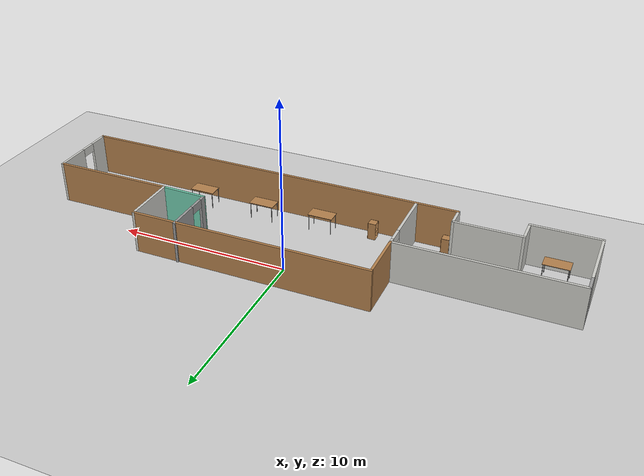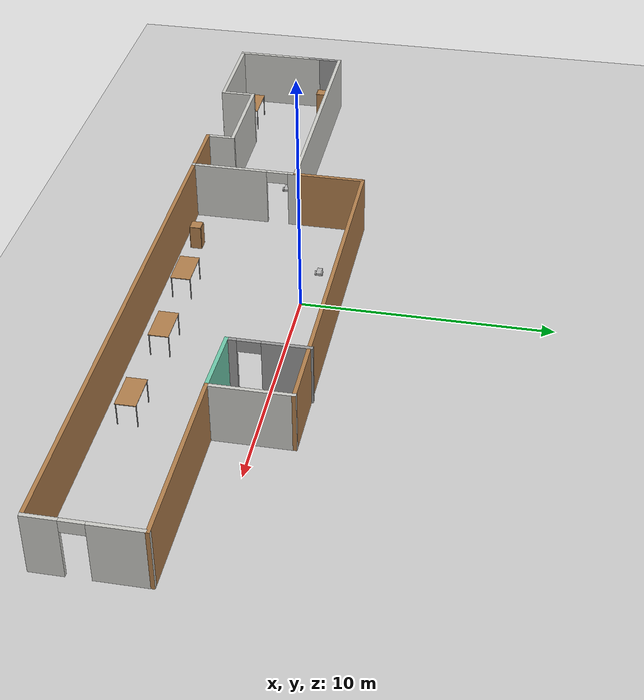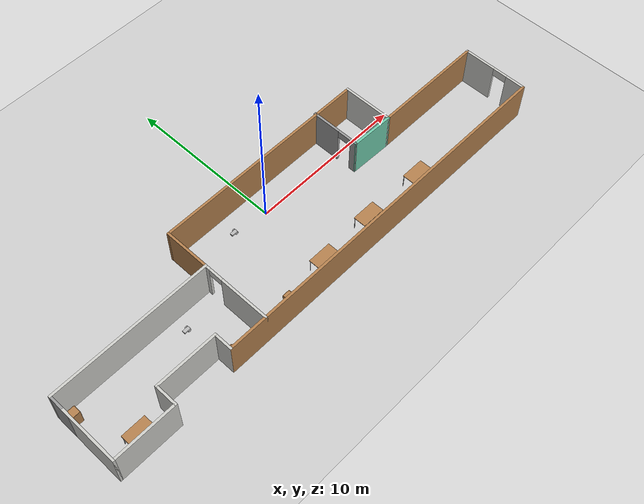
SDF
<sdf version="1.6">
 <world name="default">
  <plugin name="welcome" filename="libwelcome.so"/>
  <light name="sun" type="directional">
   <pose>0 0 10 0 -0 0</pose>
   <diffuse>0.8 0.8 0.8 1</diffuse>
   <specular>0.2 0.2 0.2 1</specular>
   <attenuation>
    <range>1000</range>
    <constant>0.9</constant>
    <linear>0.01</linear>
    <quadratic>0.001</quadratic>
   </attenuation>
   <direction>-0.5 0.1 -0.9</direction>
  </light>
  <model name="ground_plane">
   <static>1</static>
   <link name="link">
    <collision name="collision">
     <geometry><plane><normal>0 0 1</normal><size>100 100</size></plane></geometry>
     <surface>
      <contact><collide_bitmask>65535</collide_bitmask></contact>
      <friction><ode><mu>100</mu><mu2>50</mu2></ode></friction>
     </surface>
    </collision>
    <visual name="visual">
     <cast_shadows>0</cast_shadows>
     <geometry><plane><normal>0 0 1</normal><size>100 100</size></plane></geometry>
     <material>
      <script><uri>file://media/materials/scripts/gazebo.material</uri><name>Gazebo/Grey</name></script>
     </material>
    </visual>
   </link>
  </model>
  <gravity>0 0 -9.8</gravity>
  <magnetic_field>6e-06 2.3e-05 -4.2e-05</magnetic_field>
  <atmosphere type="adiabatic"/>
  <physics name="default_physics" default="0" type="ode">
   <max_step_size>0.001</max_step_size>
   <real_time_factor>1</real_time_factor>
   <real_time_update_rate>1000</real_time_update_rate>
  </physics>
  <scene><ambient>0.4 0.4 0.4 1</ambient><background>0.7 0.7 0.7 1</background><shadows>1</shadows></scene>
  <spherical_coordinates>
   <surface_model>EARTH_WGS84</surface_model>
   <latitude_deg>0</latitude_deg>
   <longitude_deg>0</longitude_deg>
   <elevation>0</elevation>
   <heading_deg>0</heading_deg>
  </spherical_coordinates>
  <model name="MyBuilding">
   <pose>-0.136 -2.179 0 0 -0 0</pose>
   <link name="Wall_0">
    <collision name="Wall_0_Collision">
     <geometry><box><size>3.75 0.15 2.5</size></box></geometry>
     <pose>0 0 1.25 0 -0 0</pose>
    </collision>
    <visual name="Wall_0_Visual">
     <pose>0 0 1.25 0 -0 0</pose>
     <geometry><box><size>3.75 0.15 2.5</size></box></geometry>
     <material>
      <script><uri>file://media/materials/scripts/gazebo.material</uri><name>Gazebo/CeilingTiled</name></script>
      <ambient>1 1 1 1</ambient>
     </material>
     <meta><layer>0</layer></meta>
    </visual>
    <pose>-15.525 -1.95962 0 0 0 -1.5708</pose>
   </link>
   <link name="Wall_1">
    <collision name="Wall_1_Collision">
     <geometry><box><size>4 0.15 2.5</size></box></geometry>
     <pose>0 0 1.25 0 -0 0</pose>
    </collision>
    <visual name="Wall_1_Visual">
     <pose>0 0 1.25 0 -0 0</pose>
     <geometry><box><size>4 0.15 2.5</size></box></geometry>
     <material>
      <script><uri>file://media/materials/scripts/gazebo.material</uri><name>Gazebo/CeilingTiled</name></script>
      <ambient>1 1 1 1</ambient>
     </material>
     <meta><layer>0</layer></meta>
    </visual>
    <pose>-13.6 -3.75962 0 0 -0 0</pose>
   </link>
   <link name="Wall_10">
    <collision name="Wall_10_Collision">
     <geometry><box><size>3 0.15 2.5</size></box></geometry>
     <pose>0 0 1.25 0 -0 0</pose>
    </collision>
    <visual name="Wall_10_Visual">
     <pose>0 0 1.25 0 -0 0</pose>
     <geometry><box><size>3 0.15 2.5</size></box></geometry>
     <material>
      <script><uri>file://media/materials/scripts/gazebo.material</uri><name>Gazebo/Wood</name></script>
      <ambient>1 1 1 1</ambient>
     </material>
     <meta><layer>0</layer></meta>
    </visual>
    <pose>-5.425 2.26539 0 0 0 -1.5708</pose>
   </link>
   <link name="Wall_11">
    <collision name="Wall_11_Collision">
     <geometry><box><size>10.25 0.15 2.5</size></box></geometry>
     <pose>0 0 1.25 0 -0 0</pose>
    </collision>
    <visual name="Wall_11_Visual">
     <pose>0 0 1.25 0 -0 0</pose>
     <geometry><box><size>10.25 0.15 2.5</size></box></geometry>
     <material>
      <script><uri>file://media/materials/scripts/gazebo.material</uri><name>Gazebo/CeilingTiled</name></script>
      <ambient>1 1 1 1</ambient>
     </material>
     <meta><layer>0</layer></meta>
    </visual>
    <pose>-10.475 0.840385 0 0 -0 3.14159</pose>
   </link>
   <link name="Wall_12">
    <collision name="Wall_12_Collision">
     <geometry><box><size>1.5 0.15 2.5</size></box></geometry>
     <pose>0 0 1.25 0 -0 0</pose>
    </collision>
    <visual name="Wall_12_Visual">
     <pose>0 0 1.25 0 -0 0</pose>
     <geometry><box><size>1.5 0.15 2.5</size></box></geometry>
     <material>
      <script><uri>file://media/materials/scripts/gazebo.material</uri><name>Gazebo/Grey</name></script>
      <ambient>1 1 1 1</ambient>
     </material>
     <meta><layer>0</layer></meta>
    </visual>
    <pose>-15.525 0.165385 0 0 0 -1.5708</pose>
   </link>
   <link name="Wall_14">
    <pose>5.8004 2.20961 0 0 0 -1.5708</pose>
    <visual name="Wall_14_Visual_0">
     <pose>-0.679744 0 1.25 0 -0 0</pose>
     <geometry><box><size>1.89051 0.15 2.5</size></box></geometry>
     <material>
      <script><uri>file://media/materials/scripts/gazebo.material</uri><name>Gazebo/Grey</name></script>
      <ambient>1 1 1 1</ambient>
     </material>
     <meta><layer>0</layer></meta>
    </visual>
    <collision name="Wall_14_Collision_0">
     <geometry><box><size>1.89051 0.15 2.5</size></box></geometry>
     <pose>-0.679744 0 1.25 0 -0 0</pose>
    </collision>
    <visual name="Wall_14_Visual_1">
     <pose>1.39526 0 1.25 0 -0 0</pose>
     <geometry><box><size>0.459488 0.15 2.5</size></box></geometry>
     <material>
      <script><uri>file://media/materials/scripts/gazebo.material</uri><name>Gazebo/Grey</name></script>
      <ambient>1 1 1 1</ambient>
     </material>
     <meta><layer>0</layer></meta>
    </visual>
    <collision name="Wall_14_Collision_1">
     <geometry><box><size>0.459488 0.15 2.5</size></box></geometry>
     <pose>1.39526 0 1.25 0 -0 0</pose>
    </collision>
    <visual name="Wall_14_Visual_2">
     <pose>0.715512 0 2.25 0 -0 0</pose>
     <geometry><box><size>0.9 0.15 0.5</size></box></geometry>
     <material>
      <script><uri>file://media/materials/scripts/gazebo.material</uri><name>Gazebo/Grey</name></script>
      <ambient>1 1 1 1</ambient>
     </material>
     <meta><layer>0</layer></meta>
    </visual>
    <collision name="Wall_14_Collision_2">
     <geometry><box><size>0.9 0.15 0.5</size></box></geometry>
     <pose>0.715512 0 2.25 0 -0 0</pose>
    </collision>
   </link>
   <link name="Wall_15">
    <collision name="Wall_15_Collision">
     <geometry><box><size>2.77551 0.15 2.5</size></box></geometry>
     <pose>0 0 1.25 0 -0 0</pose>
    </collision>
    <visual name="Wall_15_Visual">
     <pose>0 0 1.25 0 -0 0</pose>
     <geometry><box><size>2.77551 0.15 2.5</size></box></geometry>
     <material>
      <script><uri>file://media/materials/scripts/gazebo.material</uri><name>Gazebo/Grey</name></script>
      <ambient>0.435294 0.796078 0.67451 1</ambient>
     </material>
     <meta><layer>0</layer></meta>
    </visual>
    <pose>7.1127 0.625 0 0 0 -0.026371</pose>
   </link>
   <link name="Wall_18">
    <pose>-5.425 -1.33462 0 0 0 -1.5708</pose>
    <visual name="Wall_18_Visual_0">
     <pose>-2.05639 0 1.25 0 -0 0</pose>
     <geometry><box><size>0.387227 0.15 2.5</size></box></geometry>
     <material>
      <script><uri>file://media/materials/scripts/gazebo.material</uri><name>Gazebo/CeilingTiled</name></script>
      <ambient>0.435294 0.796078 0.67451 1</ambient>
     </material>
     <meta><layer>0</layer></meta>
    </visual>
    <collision name="Wall_18_Collision_0">
     <geometry><box><size>0.387227 0.15 2.5</size></box></geometry>
     <pose>-2.05639 0 1.25 0 -0 0</pose>
    </collision>
    <visual name="Wall_18_Visual_1">
     <pose>0.643614 0 1.25 0 -0 0</pose>
     <geometry><box><size>3.21277 0.15 2.5</size></box></geometry>
     <material>
      <script><uri>file://media/materials/scripts/gazebo.material</uri><name>Gazebo/CeilingTiled</name></script>
      <ambient>0.435294 0.796078 0.67451 1</ambient>
     </material>
     <meta><layer>0</layer></meta>
    </visual>
    <collision name="Wall_18_Collision_1">
     <geometry><box><size>3.21277 0.15 2.5</size></box></geometry>
     <pose>0.643614 0 1.25 0 -0 0</pose>
    </collision>
    <visual name="Wall_18_Visual_2">
     <pose>-1.41277 0 2.25 0 -0 0</pose>
     <geometry><box><size>0.9 0.15 0.5</size></box></geometry>
     <material>
      <script><uri>file://media/materials/scripts/gazebo.material</uri><name>Gazebo/CeilingTiled</name></script>
      <ambient>0.435294 0.796078 0.67451 1</ambient>
     </material>
     <meta><layer>0</layer></meta>
    </visual>
    <collision name="Wall_18_Collision_2">
     <geometry><box><size>0.9 0.15 0.5</size></box></geometry>
     <pose>-1.41277 0 2.25 0 -0 0</pose>
    </collision>
   </link>
   <link name="Wall_2">
    <collision name="Wall_2_Collision">
     <geometry><box><size>1.5 0.15 2.5</size></box></geometry>
     <pose>0 0 1.25 0 -0 0</pose>
    </collision>
    <visual name="Wall_2_Visual">
     <pose>0 0 1.25 0 -0 0</pose>
     <geometry><box><size>1.5 0.15 2.5</size></box></geometry>
     <material>
      <script><uri>file://media/materials/scripts/gazebo.material</uri><name>Gazebo/CeilingTiled</name></script>
      <ambient>1 1 1 1</ambient>
     </material>
     <meta><layer>0</layer></meta>
    </visual>
    <pose>-11.675 -3.08461 0 0 -0 1.5708</pose>
   </link>
   <link name="Wall_3">
    <collision name="Wall_3_Collision">
     <geometry><box><size>4 0.15 2.5</size></box></geometry>
     <pose>0 0 1.25 0 -0 0</pose>
    </collision>
    <visual name="Wall_3_Visual">
     <pose>0 0 1.25 0 -0 0</pose>
     <geometry><box><size>4 0.15 2.5</size></box></geometry>
     <material>
      <script><uri>file://media/materials/scripts/gazebo.material</uri><name>Gazebo/CeilingTiled</name></script>
      <ambient>1 1 1 1</ambient>
     </material>
     <meta><layer>0</layer></meta>
    </visual>
    <pose>-9.75 -2.40962 0 0 -0 0</pose>
   </link>
   <link name="Wall_4">
    <collision name="Wall_4_Collision">
     <geometry><box><size>1.25 0.15 2.5</size></box></geometry>
     <pose>0 0 1.25 0 -0 0</pose>
    </collision>
    <visual name="Wall_4_Visual">
     <pose>0 0 1.25 0 -0 0</pose>
     <geometry><box><size>1.25 0.15 2.5</size></box></geometry>
     <material>
      <script><uri>file://media/materials/scripts/gazebo.material</uri><name>Gazebo/CeilingTiled</name></script>
      <ambient>1 1 1 1</ambient>
     </material>
     <meta><layer>0</layer></meta>
    </visual>
    <pose>-7.825 -2.95961 0 0 0 -1.5708</pose>
   </link>
   <link name="Wall_5">
    <collision name="Wall_5_Collision">
     <geometry><box><size>23.5 0.15 2.5</size></box></geometry>
     <pose>0 0 1.25 0 -0 0</pose>
    </collision>
    <visual name="Wall_5_Visual">
     <pose>0 0 1.25 0 -0 0</pose>
     <geometry><box><size>23.5 0.15 2.5</size></box></geometry>
     <material>
      <script><uri>file://media/materials/scripts/gazebo.material</uri><name>Gazebo/Wood</name></script>
      <ambient>1 1 1 1</ambient>
     </material>
     <meta><layer>0</layer></meta>
    </visual>
    <pose>3.85 -3.50962 0 0 -0 0</pose>
   </link>
   <link name="Wall_6">
    <pose>15.525 -1.45962 0 0 -0 1.5708</pose>
    <visual name="Wall_6_Visual_0">
     <pose>-1.48955 0 1.25 0 -0 0</pose>
     <geometry><box><size>1.2709 0.15 2.5</size></box></geometry>
     <material>
      <script><uri>file://media/materials/scripts/gazebo.material</uri><name>Gazebo/CeilingTiled</name></script>
      <ambient>1 1 1 1</ambient>
     </material>
     <meta><layer>0</layer></meta>
    </visual>
    <collision name="Wall_6_Collision_0">
     <geometry><box><size>1.2709 0.15 2.5</size></box></geometry>
     <pose>-1.48955 0 1.25 0 -0 0</pose>
    </collision>
    <visual name="Wall_6_Visual_1">
     <pose>1.08545 0 1.25 0 -0 0</pose>
     <geometry><box><size>2.0791 0.15 2.5</size></box></geometry>
     <material>
      <script><uri>file://media/materials/scripts/gazebo.material</uri><name>Gazebo/CeilingTiled</name></script>
      <ambient>1 1 1 1</ambient>
     </material>
     <meta><layer>0</layer></meta>
    </visual>
    <collision name="Wall_6_Collision_1">
     <geometry><box><size>2.0791 0.15 2.5</size></box></geometry>
     <pose>1.08545 0 1.25 0 -0 0</pose>
    </collision>
    <visual name="Wall_6_Visual_2">
     <pose>-0.404095 0 2.25 0 -0 0</pose>
     <geometry><box><size>0.9 0.15 0.5</size></box></geometry>
     <material>
      <script><uri>file://media/materials/scripts/gazebo.material</uri><name>Gazebo/CeilingTiled</name></script>
      <ambient>1 1 1 1</ambient>
     </material>
     <meta><layer>0</layer></meta>
    </visual>
    <collision name="Wall_6_Collision_2">
     <geometry><box><size>0.9 0.15 0.5</size></box></geometry>
     <pose>-0.404095 0 2.25 0 -0 0</pose>
    </collision>
   </link>
   <link name="Wall_7">
    <collision name="Wall_7_Collision">
     <geometry><box><size>7.25 0.15 2.5</size></box></geometry>
     <pose>0 0 1.25 0 -0 0</pose>
    </collision>
    <visual name="Wall_7_Visual">
     <pose>0 0 1.25 0 -0 0</pose>
     <geometry><box><size>7.25 0.15 2.5</size></box></geometry>
     <material>
      <script><uri>file://media/materials/scripts/gazebo.material</uri><name>Gazebo/Wood</name></script>
      <ambient>1 1 1 1</ambient>
     </material>
     <meta><layer>0</layer></meta>
    </visual>
    <pose>11.975 0.590385 0 0 -0 3.14159</pose>
   </link>
   <link name="Wall_8">
    <collision name="Wall_8_Collision">
     <geometry><box><size>3.25 0.15 2.5</size></box></geometry>
     <pose>0 0 1.25 0 -0 0</pose>
    </collision>
    <visual name="Wall_8_Visual">
     <pose>0 0 1.25 0 -0 0</pose>
     <geometry><box><size>3.25 0.15 2.5</size></box></geometry>
     <material>
      <script><uri>file://media/materials/scripts/gazebo.material</uri><name>Gazebo/CeilingTiled</name></script>
      <ambient>1 1 1 1</ambient>
     </material>
     <meta><layer>0</layer></meta>
    </visual>
    <pose>8.425 2.14039 0 0 -0 1.5708</pose>
   </link>
   <link name="Wall_9">
    <collision name="Wall_9_Collision">
     <geometry><box><size>14 0.15 2.5</size></box></geometry>
     <pose>0 0 1.25 0 -0 0</pose>
    </collision>
    <visual name="Wall_9_Visual">
     <pose>0 0 1.25 0 -0 0</pose>
     <geometry><box><size>14 0.15 2.5</size></box></geometry>
     <material>
      <script><uri>file://media/materials/scripts/gazebo.material</uri><name>Gazebo/Wood</name></script>
      <ambient>1 1 1 1</ambient>
     </material>
     <meta><layer>0</layer></meta>
    </visual>
    <pose>1.5 3.69039 0 0 -0 3.14159</pose>
   </link>
   <static>1</static>
  </model>
  <audio><device>default</device></audio>
  <model name="cabinet">
   <static>1</static>
   <link name="cabinet_bottom_plate">
    <inertial>
     <pose>0 0 -1 0 -0 0</pose>
     <inertia><ixx>2.05</ixx><ixy>0</ixy><ixz>0</ixz><iyy>2.05</iyy><iyz>0</iyz><izz>2.05</izz></inertia>
     <mass>25</mass>
    </inertial>
    <collision name="cabinet_bottom_plate_geom">
     <pose>0 0 0.01 0 -0 0</pose>
     <geometry><box><size>0.45 0.45 0.02</size></box></geometry>
    </collision>
    <visual name="cabinet_bottom_plate_geom_visual">
     <pose>0 0 0.01 0 -0 0</pose>
     <geometry><box><size>0.45 0.45 0.02</size></box></geometry>
     <material>
      <script><uri>file://media/materials/scripts/gazebo.material</uri><name>Gazebo/Wood</name></script>
     </material>
    </visual>
    <collision name="cabinet_bottom_plate_geom_cabinet_back_plate">
     <pose>0.235 0 0.51 0 -0 0</pose>
     <geometry><box><size>0.02 0.45 1.02</size></box></geometry>
    </collision>
    <visual name="cabinet_bottom_plate_geom_cabinet_back_plate_visual">
     <pose>0.235 0 0.51 0 -0 0</pose>
     <geometry><box><size>0.02 0.45 1.02</size></box></geometry>
     <material>
      <script><uri>file://media/materials/scripts/gazebo.material</uri><name>Gazebo/Wood</name></script>
     </material>
    </visual>
    <collision name="cabinet_bottom_plate_geom_cabinet_left_plate">
     <pose>0 0.235 0.51 0 -0 0</pose>
     <geometry><box><size>0.45 0.02 1.02</size></box></geometry>
    </collision>
    <visual name="cabinet_bottom_plate_geom_cabinet_left_plate_visual">
     <pose>0 0.235 0.51 0 -0 0</pose>
     <geometry><box><size>0.45 0.02 1.02</size></box></geometry>
     <material>
      <script><uri>file://media/materials/scripts/gazebo.material</uri><name>Gazebo/Wood</name></script>
     </material>
    </visual>
    <collision name="cabinet_bottom_plate_geom_cabinet_middle_plate">
     <pose>0 0 0.51 0 -0 0</pose>
     <geometry><box><size>0.45 0.45 0.02</size></box></geometry>
    </collision>
    <visual name="cabinet_bottom_plate_geom_cabinet_middle_plate_visual">
     <pose>0 0 0.51 0 -0 0</pose>
     <geometry><box><size>0.45 0.45 0.02</size></box></geometry>
     <material>
      <script><uri>file://media/materials/scripts/gazebo.material</uri><name>Gazebo/Wood</name></script>
     </material>
    </visual>
    <collision name="cabinet_bottom_plate_geom_cabinet_right_plate">
     <pose>0 -0.235 0.51 0 -0 0</pose>
     <geometry><box><size>0.45 0.02 1.02</size></box></geometry>
    </collision>
    <visual name="cabinet_bottom_plate_geom_cabinet_right_plate_visual">
     <pose>0 -0.235 0.51 0 -0 0</pose>
     <geometry><box><size>0.45 0.02 1.02</size></box></geometry>
     <material>
      <script><uri>file://media/materials/scripts/gazebo.material</uri><name>Gazebo/Wood</name></script>
     </material>
    </visual>
    <collision name="cabinet_bottom_plate_geom_cabinet_top_plate">
     <pose>0 0 1.01 0 -0 0</pose>
     <geometry><box><size>0.45 0.45 0.02</size></box></geometry>
    </collision>
    <visual name="cabinet_bottom_plate_geom_cabinet_top_plate_visual">
     <pose>0 0 1.01 0 -0 0</pose>
     <geometry><box><size>0.45 0.45 0.02</size></box></geometry>
     <material>
      <script><uri>file://media/materials/scripts/gazebo.material</uri><name>Gazebo/Wood</name></script>
     </material>
    </visual>
   </link>
   <pose>-3.28072 -5.05494 0 0 -0 0</pose>
  </model>
  <model name="table">
   <static>1</static>
   <link name="link">
    <collision name="surface">
     <pose>0 0 1 0 -0 0</pose>
     <geometry><box><size>1.5 0.8 0.03</size></box></geometry>
     <surface><friction><ode><mu>0.6</mu><mu2>0.6</mu2></ode></friction></surface>
    </collision>
    <visual name="visual1">
     <pose>0 0 1 0 -0 0</pose>
     <geometry><box><size>1.5 0.8 0.03</size></box></geometry>
     <material>
      <script><uri>file://media/materials/scripts/gazebo.material</uri><name>Gazebo/Wood</name></script>
     </material>
    </visual>
    <collision name="front_left_leg">
     <pose>0.68 0.38 0.5 0 -0 0</pose>
     <geometry><cylinder><radius>0.02</radius><length>1</length></cylinder></geometry>
    </collision>
    <visual name="front_left_leg">
     <pose>0.68 0.38 0.5 0 -0 0</pose>
     <geometry><cylinder><radius>0.02</radius><length>1</length></cylinder></geometry>
     <material>
      <script><uri>file://media/materials/scripts/gazebo.material</uri><name>Gazebo/Grey</name></script>
     </material>
    </visual>
    <collision name="front_right_leg">
     <pose>0.68 -0.38 0.5 0 -0 0</pose>
     <geometry><cylinder><radius>0.02</radius><length>1</length></cylinder></geometry>
    </collision>
    <visual name="front_right_leg">
     <pose>0.68 -0.38 0.5 0 -0 0</pose>
     <geometry><cylinder><radius>0.02</radius><length>1</length></cylinder></geometry>
     <material>
      <script><uri>file://media/materials/scripts/gazebo.material</uri><name>Gazebo/Grey</name></script>
     </material>
    </visual>
    <collision name="back_right_leg">
     <pose>-0.68 -0.38 0.5 0 -0 0</pose>
     <geometry><cylinder><radius>0.02</radius><length>1</length></cylinder></geometry>
    </collision>
    <visual name="back_right_leg">
     <pose>-0.68 -0.38 0.5 0 -0 0</pose>
     <geometry><cylinder><radius>0.02</radius><length>1</length></cylinder></geometry>
     <material>
      <script><uri>file://media/materials/scripts/gazebo.material</uri><name>Gazebo/Grey</name></script>
     </material>
    </visual>
    <collision name="back_left_leg">
     <pose>-0.68 0.38 0.5 0 -0 0</pose>
     <geometry><cylinder><radius>0.02</radius><length>1</length></cylinder></geometry>
    </collision>
    <visual name="back_left_leg">
     <pose>-0.68 0.38 0.5 0 -0 0</pose>
     <geometry><cylinder><radius>0.02</radius><length>1</length></cylinder></geometry>
     <material>
      <script><uri>file://media/materials/scripts/gazebo.material</uri><name>Gazebo/Grey</name></script>
     </material>
    </visual>
   </link>
   <pose>-0.254972 -4.72462 0 0 -0 0</pose>
  </model>
  <model name="table_clone">
   <static>1</static>
   <link name="link">
    <collision name="surface">
     <pose>0 0 1 0 -0 0</pose>
     <geometry><box><size>1.5 0.8 0.03</size></box></geometry>
     <surface><friction><ode><mu>0.6</mu><mu2>0.6</mu2></ode></friction></surface>
    </collision>
    <visual name="visual1">
     <pose>0 0 1 0 -0 0</pose>
     <geometry><box><size>1.5 0.8 0.03</size></box></geometry>
     <material>
      <script><uri>file://media/materials/scripts/gazebo.material</uri><name>Gazebo/Wood</name></script>
     </material>
    </visual>
    <collision name="front_left_leg">
     <pose>0.68 0.38 0.5 0 -0 0</pose>
     <geometry><cylinder><radius>0.02</radius><length>1</length></cylinder></geometry>
    </collision>
    <visual name="front_left_leg">
     <pose>0.68 0.38 0.5 0 -0 0</pose>
     <geometry><cylinder><radius>0.02</radius><length>1</length></cylinder></geometry>
     <material>
      <script><uri>file://media/materials/scripts/gazebo.material</uri><name>Gazebo/Grey</name></script>
     </material>
    </visual>
    <collision name="front_right_leg">
     <pose>0.68 -0.38 0.5 0 -0 0</pose>
     <geometry><cylinder><radius>0.02</radius><length>1</length></cylinder></geometry>
    </collision>
    <visual name="front_right_leg">
     <pose>0.68 -0.38 0.5 0 -0 0</pose>
     <geometry><cylinder><radius>0.02</radius><length>1</length></cylinder></geometry>
     <material>
      <script><uri>file://media/materials/scripts/gazebo.material</uri><name>Gazebo/Grey</name></script>
     </material>
    </visual>
    <collision name="back_right_leg">
     <pose>-0.68 -0.38 0.5 0 -0 0</pose>
     <geometry><cylinder><radius>0.02</radius><length>1</length></cylinder></geometry>
    </collision>
    <visual name="back_right_leg">
     <pose>-0.68 -0.38 0.5 0 -0 0</pose>
     <geometry><cylinder><radius>0.02</radius><length>1</length></cylinder></geometry>
     <material>
      <script><uri>file://media/materials/scripts/gazebo.material</uri><name>Gazebo/Grey</name></script>
     </material>
    </visual>
    <collision name="back_left_leg">
     <pose>-0.68 0.38 0.5 0 -0 0</pose>
     <geometry><cylinder><radius>0.02</radius><length>1</length></cylinder></geometry>
    </collision>
    <visual name="back_left_leg">
     <pose>-0.68 0.38 0.5 0 -0 0</pose>
     <geometry><cylinder><radius>0.02</radius><length>1</length></cylinder></geometry>
     <material>
      <script><uri>file://media/materials/scripts/gazebo.material</uri><name>Gazebo/Grey</name></script>
     </material>
    </visual>
   </link>
   <pose>-13.6502 -5.07837 0 0 -0 0</pose>
  </model>
  <model name="cabinet_clone">
   <static>1</static>
   <link name="cabinet_bottom_plate">
    <inertial>
     <pose>0 0 -1 0 -0 0</pose>
     <inertia><ixx>2.05</ixx><ixy>0</ixy><ixz>0</ixz><iyy>2.05</iyy><iyz>0</iyz><izz>2.05</izz></inertia>
     <mass>25</mass>
    </inertial>
    <collision name="cabinet_bottom_plate_geom">
     <pose>0 0 0.01 0 -0 0</pose>
     <geometry><box><size>0.45 0.45 0.02</size></box></geometry>
    </collision>
    <visual name="cabinet_bottom_plate_geom_visual">
     <pose>0 0 0.01 0 -0 0</pose>
     <geometry><box><size>0.45 0.45 0.02</size></box></geometry>
     <material>
      <script><uri>file://media/materials/scripts/gazebo.material</uri><name>Gazebo/Wood</name></script>
     </material>
    </visual>
    <collision name="cabinet_bottom_plate_geom_cabinet_back_plate">
     <pose>0.235 0 0.51 0 -0 0</pose>
     <geometry><box><size>0.02 0.45 1.02</size></box></geometry>
    </collision>
    <visual name="cabinet_bottom_plate_geom_cabinet_back_plate_visual">
     <pose>0.235 0 0.51 0 -0 0</pose>
     <geometry><box><size>0.02 0.45 1.02</size></box></geometry>
     <material>
      <script><uri>file://media/materials/scripts/gazebo.material</uri><name>Gazebo/Wood</name></script>
     </material>
    </visual>
    <collision name="cabinet_bottom_plate_geom_cabinet_left_plate">
     <pose>0 0.235 0.51 0 -0 0</pose>
     <geometry><box><size>0.45 0.02 1.02</size></box></geometry>
    </collision>
    <visual name="cabinet_bottom_plate_geom_cabinet_left_plate_visual">
     <pose>0 0.235 0.51 0 -0 0</pose>
     <geometry><box><size>0.45 0.02 1.02</size></box></geometry>
     <material>
      <script><uri>file://media/materials/scripts/gazebo.material</uri><name>Gazebo/Wood</name></script>
     </material>
    </visual>
    <collision name="cabinet_bottom_plate_geom_cabinet_middle_plate">
     <pose>0 0 0.51 0 -0 0</pose>
     <geometry><box><size>0.45 0.45 0.02</size></box></geometry>
    </collision>
    <visual name="cabinet_bottom_plate_geom_cabinet_middle_plate_visual">
     <pose>0 0 0.51 0 -0 0</pose>
     <geometry><box><size>0.45 0.45 0.02</size></box></geometry>
     <material>
      <script><uri>file://media/materials/scripts/gazebo.material</uri><name>Gazebo/Wood</name></script>
     </material>
    </visual>
    <collision name="cabinet_bottom_plate_geom_cabinet_right_plate">
     <pose>0 -0.235 0.51 0 -0 0</pose>
     <geometry><box><size>0.45 0.02 1.02</size></box></geometry>
    </collision>
    <visual name="cabinet_bottom_plate_geom_cabinet_right_plate_visual">
     <pose>0 -0.235 0.51 0 -0 0</pose>
     <geometry><box><size>0.45 0.02 1.02</size></box></geometry>
     <material>
      <script><uri>file://media/materials/scripts/gazebo.material</uri><name>Gazebo/Wood</name></script>
     </material>
    </visual>
    <collision name="cabinet_bottom_plate_geom_cabinet_top_plate">
     <pose>0 0 1.01 0 -0 0</pose>
     <geometry><box><size>0.45 0.45 0.02</size></box></geometry>
    </collision>
    <visual name="cabinet_bottom_plate_geom_cabinet_top_plate_visual">
     <pose>0 0 1.01 0 -0 0</pose>
     <geometry><box><size>0.45 0.45 0.02</size></box></geometry>
     <material>
      <script><uri>file://media/materials/scripts/gazebo.material</uri><name>Gazebo/Wood</name></script>
     </material>
    </visual>
   </link>
   <pose>-15.1706 -2.05762 0 0 -0 0</pose>
  </model>
  <model name="cabinet_clone_0">
   <static>1</static>
   <link name="cabinet_bottom_plate">
    <inertial>
     <pose>0 0 -1 0 -0 0</pose>
     <inertia><ixx>2.05</ixx><ixy>0</ixy><ixz>0</ixz><iyy>2.05</iyy><iyz>0</iyz><izz>2.05</izz></inertia>
     <mass>25</mass>
    </inertial>
    <collision name="cabinet_bottom_plate_geom">
     <pose>0 0 0.01 0 -0 0</pose>
     <geometry><box><size>0.45 0.45 0.02</size></box></geometry>
    </collision>
    <visual name="cabinet_bottom_plate_geom_visual">
     <pose>0 0 0.01 0 -0 0</pose>
     <geometry><box><size>0.45 0.45 0.02</size></box></geometry>
     <material>
      <script><uri>file://media/materials/scripts/gazebo.material</uri><name>Gazebo/Wood</name></script>
     </material>
    </visual>
    <collision name="cabinet_bottom_plate_geom_cabinet_back_plate">
     <pose>0.235 0 0.51 0 -0 0</pose>
     <geometry><box><size>0.02 0.45 1.02</size></box></geometry>
    </collision>
    <visual name="cabinet_bottom_plate_geom_cabinet_back_plate_visual">
     <pose>0.235 0 0.51 0 -0 0</pose>
     <geometry><box><size>0.02 0.45 1.02</size></box></geometry>
     <material>
      <script><uri>file://media/materials/scripts/gazebo.material</uri><name>Gazebo/Wood</name></script>
     </material>
    </visual>
    <collision name="cabinet_bottom_plate_geom_cabinet_left_plate">
     <pose>0 0.235 0.51 0 -0 0</pose>
     <geometry><box><size>0.45 0.02 1.02</size></box></geometry>
    </collision>
    <visual name="cabinet_bottom_plate_geom_cabinet_left_plate_visual">
     <pose>0 0.235 0.51 0 -0 0</pose>
     <geometry><box><size>0.45 0.02 1.02</size></box></geometry>
     <material>
      <script><uri>file://media/materials/scripts/gazebo.material</uri><name>Gazebo/Wood</name></script>
     </material>
    </visual>
    <collision name="cabinet_bottom_plate_geom_cabinet_middle_plate">
     <pose>0 0 0.51 0 -0 0</pose>
     <geometry><box><size>0.45 0.45 0.02</size></box></geometry>
    </collision>
    <visual name="cabinet_bottom_plate_geom_cabinet_middle_plate_visual">
     <pose>0 0 0.51 0 -0 0</pose>
     <geometry><box><size>0.45 0.45 0.02</size></box></geometry>
     <material>
      <script><uri>file://media/materials/scripts/gazebo.material</uri><name>Gazebo/Wood</name></script>
     </material>
    </visual>
    <collision name="cabinet_bottom_plate_geom_cabinet_right_plate">
     <pose>0 -0.235 0.51 0 -0 0</pose>
     <geometry><box><size>0.45 0.02 1.02</size></box></geometry>
    </collision>
    <visual name="cabinet_bottom_plate_geom_cabinet_right_plate_visual">
     <pose>0 -0.235 0.51 0 -0 0</pose>
     <geometry><box><size>0.45 0.02 1.02</size></box></geometry>
     <material>
      <script><uri>file://media/materials/scripts/gazebo.material</uri><name>Gazebo/Wood</name></script>
     </material>
    </visual>
    <collision name="cabinet_bottom_plate_geom_cabinet_top_plate">
     <pose>0 0 1.01 0 -0 0</pose>
     <geometry><box><size>0.45 0.45 0.02</size></box></geometry>
    </collision>
    <visual name="cabinet_bottom_plate_geom_cabinet_top_plate_visual">
     <pose>0 0 1.01 0 -0 0</pose>
     <geometry><box><size>0.45 0.45 0.02</size></box></geometry>
     <material>
      <script><uri>file://media/materials/scripts/gazebo.material</uri><name>Gazebo/Wood</name></script>
     </material>
    </visual>
   </link>
   <pose>-7.55359 -5.16094 0 0 -0 0</pose>
  </model>
  <model name="table_clone_0">
   <static>1</static>
   <link name="link">
    <collision name="surface">
     <pose>0 0 1 0 -0 0</pose>
     <geometry><box><size>1.5 0.8 0.03</size></box></geometry>
     <surface><friction><ode><mu>0.6</mu><mu2>0.6</mu2></ode></friction></surface>
    </collision>
    <visual name="visual1">
     <pose>0 0 1 0 -0 0</pose>
     <geometry><box><size>1.5 0.8 0.03</size></box></geometry>
     <material>
      <script><uri>file://media/materials/scripts/gazebo.material</uri><name>Gazebo/Wood</name></script>
     </material>
    </visual>
    <collision name="front_left_leg">
     <pose>0.68 0.38 0.5 0 -0 0</pose>
     <geometry><cylinder><radius>0.02</radius><length>1</length></cylinder></geometry>
    </collision>
    <visual name="front_left_leg">
     <pose>0.68 0.38 0.5 0 -0 0</pose>
     <geometry><cylinder><radius>0.02</radius><length>1</length></cylinder></geometry>
     <material>
      <script><uri>file://media/materials/scripts/gazebo.material</uri><name>Gazebo/Grey</name></script>
     </material>
    </visual>
    <collision name="front_right_leg">
     <pose>0.68 -0.38 0.5 0 -0 0</pose>
     <geometry><cylinder><radius>0.02</radius><length>1</length></cylinder></geometry>
    </collision>
    <visual name="front_right_leg">
     <pose>0.68 -0.38 0.5 0 -0 0</pose>
     <geometry><cylinder><radius>0.02</radius><length>1</length></cylinder></geometry>
     <material>
      <script><uri>file://media/materials/scripts/gazebo.material</uri><name>Gazebo/Grey</name></script>
     </material>
    </visual>
    <collision name="back_right_leg">
     <pose>-0.68 -0.38 0.5 0 -0 0</pose>
     <geometry><cylinder><radius>0.02</radius><length>1</length></cylinder></geometry>
    </collision>
    <visual name="back_right_leg">
     <pose>-0.68 -0.38 0.5 0 -0 0</pose>
     <geometry><cylinder><radius>0.02</radius><length>1</length></cylinder></geometry>
     <material>
      <script><uri>file://media/materials/scripts/gazebo.material</uri><name>Gazebo/Grey</name></script>
     </material>
    </visual>
    <collision name="back_left_leg">
     <pose>-0.68 0.38 0.5 0 -0 0</pose>
     <geometry><cylinder><radius>0.02</radius><length>1</length></cylinder></geometry>
    </collision>
    <visual name="back_left_leg">
     <pose>-0.68 0.38 0.5 0 -0 0</pose>
     <geometry><cylinder><radius>0.02</radius><length>1</length></cylinder></geometry>
     <material>
      <script><uri>file://media/materials/scripts/gazebo.material</uri><name>Gazebo/Grey</name></script>
     </material>
    </visual>
   </link>
   <pose>3.42668 -4.57491 0 0 -0 0</pose>
  </model>
  <model name="table_clone_0_clone">
   <static>1</static>
   <link name="link">
    <collision name="surface">
     <pose>0 0 1 0 -0 0</pose>
     <geometry><box><size>1.5 0.8 0.03</size></box></geometry>
     <surface><friction><ode><mu>0.6</mu><mu2>0.6</mu2></ode></friction></surface>
    </collision>
    <visual name="visual1">
     <pose>0 0 1 0 -0 0</pose>
     <geometry><box><size>1.5 0.8 0.03</size></box></geometry>
     <material>
      <script><uri>file://media/materials/scripts/gazebo.material</uri><name>Gazebo/Wood</name></script>
     </material>
    </visual>
    <collision name="front_left_leg">
     <pose>0.68 0.38 0.5 0 -0 0</pose>
     <geometry><cylinder><radius>0.02</radius><length>1</length></cylinder></geometry>
    </collision>
    <visual name="front_left_leg">
     <pose>0.68 0.38 0.5 0 -0 0</pose>
     <geometry><cylinder><radius>0.02</radius><length>1</length></cylinder></geometry>
     <material>
      <script><uri>file://media/materials/scripts/gazebo.material</uri><name>Gazebo/Grey</name></script>
     </material>
    </visual>
    <collision name="front_right_leg">
     <pose>0.68 -0.38 0.5 0 -0 0</pose>
     <geometry><cylinder><radius>0.02</radius><length>1</length></cylinder></geometry>
    </collision>
    <visual name="front_right_leg">
     <pose>0.68 -0.38 0.5 0 -0 0</pose>
     <geometry><cylinder><radius>0.02</radius><length>1</length></cylinder></geometry>
     <material>
      <script><uri>file://media/materials/scripts/gazebo.material</uri><name>Gazebo/Grey</name></script>
     </material>
    </visual>
    <collision name="back_right_leg">
     <pose>-0.68 -0.38 0.5 0 -0 0</pose>
     <geometry><cylinder><radius>0.02</radius><length>1</length></cylinder></geometry>
    </collision>
    <visual name="back_right_leg">
     <pose>-0.68 -0.38 0.5 0 -0 0</pose>
     <geometry><cylinder><radius>0.02</radius><length>1</length></cylinder></geometry>
     <material>
      <script><uri>file://media/materials/scripts/gazebo.material</uri><name>Gazebo/Grey</name></script>
     </material>
    </visual>
    <collision name="back_left_leg">
     <pose>-0.68 0.38 0.5 0 -0 0</pose>
     <geometry><cylinder><radius>0.02</radius><length>1</length></cylinder></geometry>
    </collision>
    <visual name="back_left_leg">
     <pose>-0.68 0.38 0.5 0 -0 0</pose>
     <geometry><cylinder><radius>0.02</radius><length>1</length></cylinder></geometry>
     <material>
      <script><uri>file://media/materials/scripts/gazebo.material</uri><name>Gazebo/Grey</name></script>
     </material>
    </visual>
   </link>
   <pose>7.4459 -4.63607 0 0 -0 0</pose>
  </model>
  <model name="my_robot">
   <static>0</static>
   <link name="chassis">
    <pose>0 0 0.1 0 -0 0</pose>
    <collision name="collision"><geometry><box><size>0.4 0.2 0.1</size></box></geometry></collision>
    <visual name="visual"><geometry><box><size>0.4 0.2 0.1</size></box></geometry></visual>
    <collision name="caster_collision">
     <pose>-0.15 0 -0.05 0 -0 0</pose>
     <geometry><sphere><radius>0.05</radius></sphere></geometry>
     <surface><friction><ode><mu>0</mu><mu2>0</mu2><slip1>1</slip1><slip2>1</slip2></ode></friction></surface>
    </collision>
    <visual name="caster_visual">
     <pose>-0.15 0 -0.05 0 -0 0</pose>
     <geometry><sphere><radius>0.05</radius></sphere></geometry>
    </visual>
    <inertial>
     <inertia><ixx>1</ixx><ixy>0</ixy><ixz>0</ixz><iyy>1</iyy><iyz>0</iyz><izz>1</izz></inertia>
     <mass>1</mass>
    </inertial>
   </link>
   <link name="left_wheel">
    <pose>0.1 0.13 0.1 -0 1.5707 1.5707</pose>
    <collision name="collision">
     <geometry><cylinder><radius>0.1</radius><length>0.05</length></cylinder></geometry>
    </collision>
    <visual name="visual">
     <geometry><cylinder><radius>0.1</radius><length>0.05</length></cylinder></geometry>
    </visual>
    <inertial>
     <inertia><ixx>1</ixx><ixy>0</ixy><ixz>0</ixz><iyy>1</iyy><iyz>0</iyz><izz>1</izz></inertia>
     <mass>1</mass>
    </inertial>
   </link>
   <link name="right_wheel">
    <pose>0.1 -0.13 0.1 -0 1.5707 1.5707</pose>
    <collision name="collision">
     <geometry><cylinder><radius>0.1</radius><length>0.05</length></cylinder></geometry>
    </collision>
    <visual name="visual">
     <geometry><cylinder><radius>0.1</radius><length>0.05</length></cylinder></geometry>
    </visual>
    <inertial>
     <inertia><ixx>1</ixx><ixy>0</ixy><ixz>0</ixz><iyy>1</iyy><iyz>0</iyz><izz>1</izz></inertia>
     <mass>1</mass>
    </inertial>
   </link>
   <joint name="left_wheel_hinge" type="revolute">
    <pose>0 0 -0.03 0 -0 0</pose>
    <child>left_wheel</child>
    <parent>chassis</parent>
    <axis>
     <xyz>0 1 0</xyz>
     <use_parent_model_frame>0</use_parent_model_frame>
     <limit><lower>-1e+16</lower><upper>1e+16</upper></limit>
     <dynamics><spring_reference>0</spring_reference><spring_stiffness>0</spring_stiffness></dynamics>
    </axis>
   </joint>
   <joint name="right_wheel_hinge" type="revolute">
    <pose>0 0 0.03 0 -0 0</pose>
    <child>right_wheel</child>
    <parent>chassis</parent>
    <axis>
     <xyz>0 1 0</xyz>
     <use_parent_model_frame>0</use_parent_model_frame>
     <limit><lower>-1e+16</lower><upper>1e+16</upper></limit>
     <dynamics><spring_reference>0</spring_reference><spring_stiffness>0</spring_stiffness></dynamics>
    </axis>
   </joint>
   <pose>-2.161 0.327148 0 0 -0 0</pose>
  </model>
  <model name="my_robot_clone">
   <static>0</static>
   <link name="chassis">
    <pose>0 0 0.1 0 -0 0</pose>
    <collision name="collision"><geometry><box><size>0.4 0.2 0.1</size></box></geometry></collision>
    <visual name="visual"><geometry><box><size>0.4 0.2 0.1</size></box></geometry></visual>
    <collision name="caster_collision">
     <pose>-0.15 0 -0.05 0 -0 0</pose>
     <geometry><sphere><radius>0.05</radius></sphere></geometry>
     <surface><friction><ode><mu>0</mu><mu2>0</mu2><slip1>1</slip1><slip2>1</slip2></ode></friction></surface>
    </collision>
    <visual name="caster_visual">
     <pose>-0.15 0 -0.05 0 -0 0</pose>
     <geometry><sphere><radius>0.05</radius></sphere></geometry>
    </visual>
    <inertial>
     <inertia><ixx>1</ixx><ixy>0</ixy><ixz>0</ixz><iyy>1</iyy><iyz>0</iyz><izz>1</izz></inertia>
     <mass>1</mass>
    </inertial>
   </link>
   <link name="left_wheel">
    <pose>0.1 0.13 0.1 -0 1.5707 1.5707</pose>
    <collision name="collision">
     <geometry><cylinder><radius>0.1</radius><length>0.05</length></cylinder></geometry>
    </collision>
    <visual name="visual">
     <geometry><cylinder><radius>0.1</radius><length>0.05</length></cylinder></geometry>
    </visual>
    <inertial>
     <inertia><ixx>1</ixx><ixy>0</ixy><ixz>0</ixz><iyy>1</iyy><iyz>0</iyz><izz>1</izz></inertia>
     <mass>1</mass>
    </inertial>
   </link>
   <link name="right_wheel">
    <pose>0.1 -0.13 0.1 -0 1.5707 1.5707</pose>
    <collision name="collision">
     <geometry><cylinder><radius>0.1</radius><length>0.05</length></cylinder></geometry>
    </collision>
    <visual name="visual">
     <geometry><cylinder><radius>0.1</radius><length>0.05</length></cylinder></geometry>
    </visual>
    <inertial>
     <inertia><ixx>1</ixx><ixy>0</ixy><ixz>0</ixz><iyy>1</iyy><iyz>0</iyz><izz>1</izz></inertia>
     <mass>1</mass>
    </inertial>
   </link>
   <joint name="left_wheel_hinge" type="revolute">
    <pose>0 0 -0.03 0 -0 0</pose>
    <child>left_wheel</child>
    <parent>chassis</parent>
    <axis>
     <xyz>0 1 0</xyz>
     <use_parent_model_frame>0</use_parent_model_frame>
     <limit><lower>-1e+16</lower><upper>1e+16</upper></limit>
     <dynamics><spring_reference>0</spring_reference><spring_stiffness>0</spring_stiffness></dynamics>
    </axis>
   </joint>
   <joint name="right_wheel_hinge" type="revolute">
    <pose>0 0 0.03 0 -0 0</pose>
    <child>right_wheel</child>
    <parent>chassis</parent>
    <axis>
     <xyz>0 1 0</xyz>
     <use_parent_model_frame>0</use_parent_model_frame>
     <limit><lower>-1e+16</lower><upper>1e+16</upper></limit>
     <dynamics><spring_reference>0</spring_reference><spring_stiffness>0</spring_stiffness></dynamics>
    </axis>
   </joint>
   <pose>-8.07002 -2.27127 0 0 -0 0</pose>
  </model>
 </world>
</sdf>
